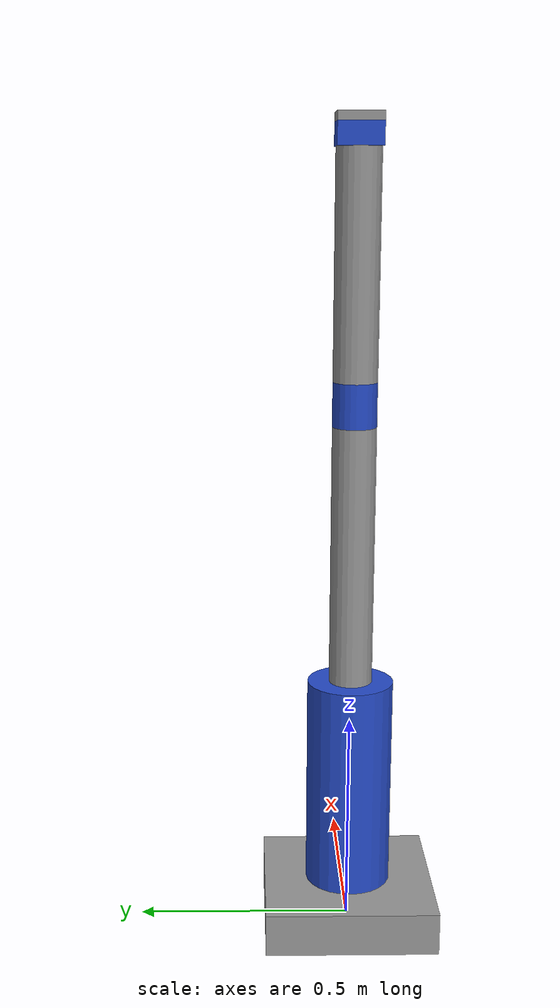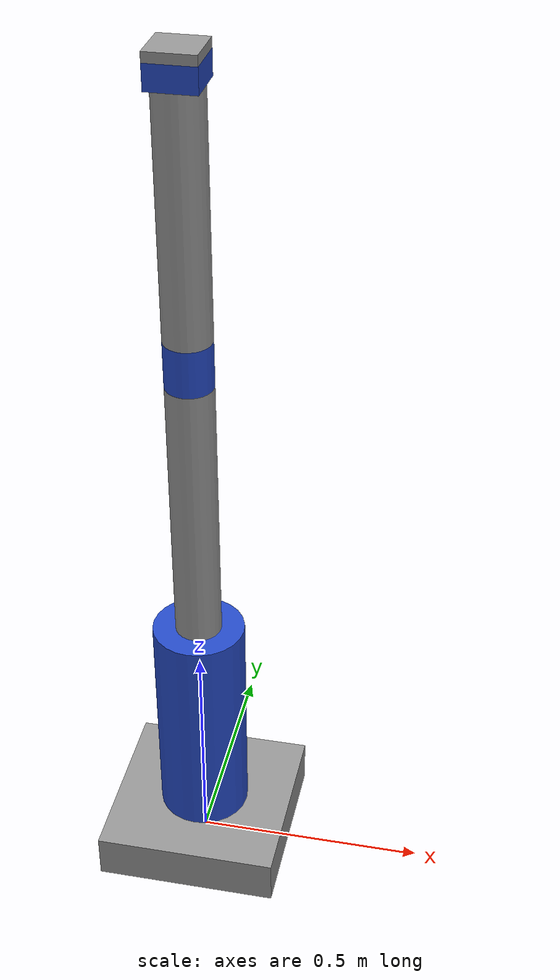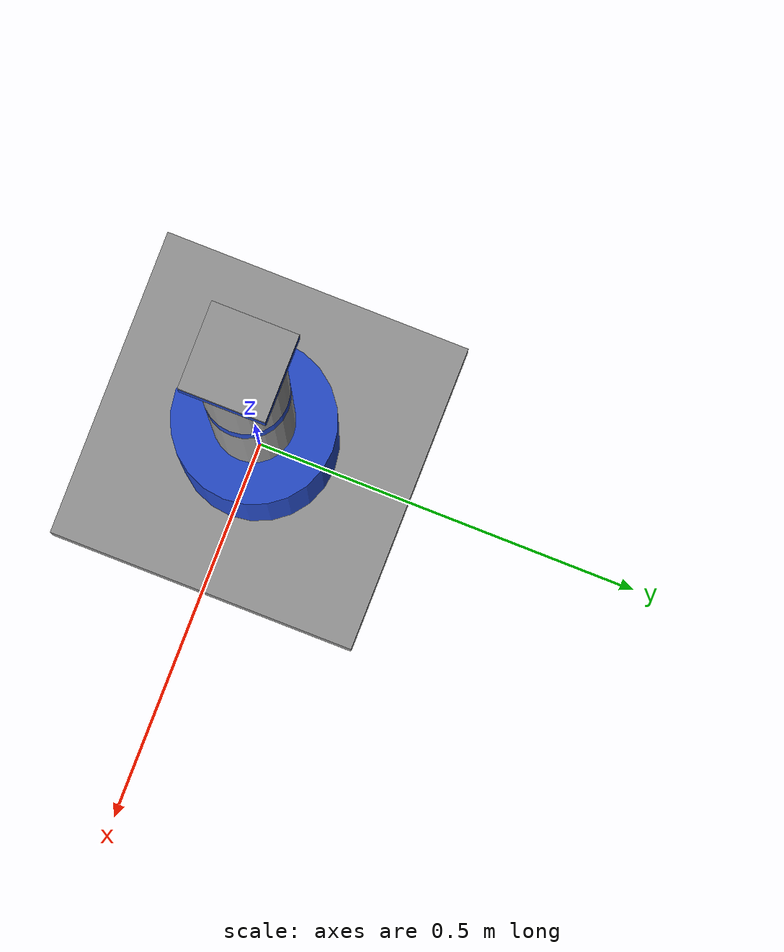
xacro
<?xml version="1.0" ?>
<robot xmlns:xacro="http://www.ros.org/xacro">

    <xacro:include filename="$(find growing_bot)/urdf/macros.xacro" />

    <!-- arm base -->
    <xacro:property name="arm_base_length" value="0.4" />
    <xacro:property name="arm_base_width" value="0.4" />
    <xacro:property name="arm_base_height" value="0.1" />
    <xacro:property name="arm_base_mass" value="2.0" />

    <!-- shoulder -->
    <xacro:property name="shoulder_length" value="0.5" />
    <xacro:property name="shoulder_radius" value="0.1" />
    <xacro:property name="shoulder_mass" value="1.5" />

    <!-- upper arm -->
    <xacro:property name="arm_length" value="0.6" />
    <xacro:property name="arm_radius" value="0.05" />
    <xacro:property name="arm_mass" value="1.0" />

    <!-- elbow -->
    <xacro:property name="elbow_length" value="0.1" />
    <xacro:property name="elbow_radius" value="0.05" />
    <xacro:property name="elbow_mass" value="0.3" />

    <!-- forearm -->
    <xacro:property name="forearm_length" value="0.5" />
    <xacro:property name="forearm_radius" value="0.05" />
    <xacro:property name="forearm_mass" value="0.8" />

    <!-- wrist -->
    <xacro:property name="wrist_length" value="0.1" />
    <xacro:property name="wrist_width" value="0.1" />
    <xacro:property name="wrist_height" value="0.05" />
    <xacro:property name="wrist_mass" value="0.2" />

    <!-- hand -->
    <xacro:property name="hand_length" value="0.1" />
    <xacro:property name="hand_width" value="0.1" />
    <xacro:property name="hand_height" value="0.02" />
    <xacro:property name="hand_mass" value="0.1" />

    <!-- joint limits / dynamics -->
    <xacro:property name="arm_joint_effort" value="1000" />
    <xacro:property name="arm_joint_velocity" value="1.0" />
    <xacro:property name="wrist_joint_effort" value="100" />
    <xacro:property name="wrist_joint_velocity" value="1.57" />
    <xacro:property name="arm_joint_damping" value="0.5" />
    <xacro:property name="arm_joint_friction" value="0.1" />

    <link name="arm_base_link">
        <visual>
            <geometry>
                <box size="${arm_base_length} ${arm_base_width} ${arm_base_height}" />
            </geometry>
            <material name="Gray" />
            <origin xyz="0 0 ${arm_base_height/2}" rpy="0 0 0" />
        </visual>
        <collision>
            <geometry>
                <box size="${arm_base_length} ${arm_base_width} ${arm_base_height}" />
            </geometry>
            <origin xyz="0 0 ${arm_base_height/2}" rpy="0 0 0" />
        </collision>
        <inertial>
            <origin xyz="0 0 ${arm_base_height/2}" rpy="0 0 0" />
            <mass value="${arm_base_mass}" />
            <xacro:box_inertia m="${arm_base_mass}" x="${arm_base_length}" y="${arm_base_width}" z="${arm_base_height}" />
        </inertial>
    </link>

    <link name="shoulder_link">
        <visual>
            <geometry>
                <cylinder length="${shoulder_length}" radius="${shoulder_radius}" />
            </geometry>
            <material name="Blue" />
            <origin xyz="0 0 ${shoulder_length/2}" rpy="0 0 0" />
        </visual>
        <collision>
            <geometry>
                <box size="${shoulder_radius} ${shoulder_radius} ${shoulder_length}" />
            </geometry>
            <origin xyz="0 0 ${shoulder_length/2}" rpy="0 0 0" />
        </collision>
        <inertial>
            <origin xyz="0 0 ${shoulder_length/2}" rpy="0 0 0" />
            <mass value="${shoulder_mass}" />
            <xacro:cylinder_inertia m="${shoulder_mass}" r="${shoulder_radius}" h="${shoulder_length}" />
        </inertial>
    </link>

    <link name="arm_link">
        <visual>
            <geometry>
                <cylinder length="${arm_length}" radius="${arm_radius}" />
            </geometry>
            <material name="Gray" />
            <origin xyz="0 0 ${arm_length/2}" rpy="0 0 0" />
        </visual>
        <collision>
            <geometry>
                <box size="${arm_radius} ${arm_radius} ${arm_length}" />
            </geometry>
            <origin xyz="0 0 ${arm_length/2}" rpy="0 0 0" />
        </collision>
        <inertial>
            <origin xyz="0 0 ${arm_length/2}" rpy="0 0 0" />
            <mass value="${arm_mass}" />
            <xacro:cylinder_inertia m="${arm_mass}" r="${arm_radius}" h="${arm_length}" />
        </inertial>
    </link>

    <link name="elbow_link">
        <visual>
            <geometry>
                <cylinder length="${elbow_length}" radius="${elbow_radius}" />
            </geometry>
            <material name="Blue" />
            <origin xyz="0 0 ${elbow_length/2}" rpy="0 0 0" />
        </visual>
        <collision>
            <geometry>
                <box size="${elbow_radius} ${elbow_radius} ${elbow_length}" />
            </geometry>
            <origin xyz="0 0 ${elbow_length/2}" rpy="0 0 0" />
        </collision>
        <inertial>
            <origin xyz="0 0 ${elbow_length/2}" rpy="0 0 0" />
            <mass value="${elbow_mass}" />
            <xacro:cylinder_inertia m="${elbow_mass}" r="${elbow_radius}" h="${elbow_length}" />
        </inertial>
    </link>

    <link name="forearm_link">
        <visual>
            <geometry>
                <cylinder length="${forearm_length}" radius="${forearm_radius}" />
            </geometry>
            <material name="Gray" />
            <origin xyz="0 0 ${forearm_length/2}" rpy="0 0 0" />
        </visual>
        <collision>
            <geometry>
                <box size="${forearm_radius} ${forearm_radius} ${forearm_length}" />
            </geometry>
            <origin xyz="0 0 ${forearm_length/2}" rpy="0 0 0" />
        </collision>
        <inertial>
            <origin xyz="0 0 ${forearm_length/2}" rpy="0 0 0" />
            <mass value="${forearm_mass}" />
            <xacro:cylinder_inertia m="${forearm_mass}" r="${forearm_radius}" h="${forearm_length}" />
        </inertial>
    </link>

    <link name="wrist_link">
        <visual>
            <geometry>
                <box size="${wrist_length} ${wrist_width} ${wrist_height}" />
            </geometry>
            <material name="Blue" />
            <origin xyz="0 0 ${wrist_height/2}" rpy="0 0 0" />
        </visual>
        <collision>
            <geometry>
                <box size="${wrist_length} ${wrist_width} ${wrist_height}" />
            </geometry>
            <origin xyz="0 0 ${wrist_height/2}" rpy="0 0 0" />
        </collision>
        <inertial>
            <origin xyz="0 0 ${wrist_height/2}" rpy="0 0 0" />
            <mass value="${wrist_mass}" />
            <xacro:box_inertia m="${wrist_mass}" x="${wrist_length}" y="${wrist_width}" z="${wrist_height}" />
        </inertial>
    </link>

    <link name="hand_link">
        <visual>
            <geometry>
                <box size="${hand_length} ${hand_width} ${hand_height}" />
            </geometry>
            <material name="Gray" />
            <origin xyz="0 0 ${hand_height/2}" rpy="0 0 0" />
        </visual>
        <collision>
            <geometry>
                <box size="${hand_length} ${hand_width} ${hand_height}" />
            </geometry>
            <origin xyz="0 0 ${hand_height/2}" rpy="0 0 0" />
        </collision>
        <inertial>
            <origin xyz="0 0 ${hand_height/2}" rpy="0 0 0" />
            <mass value="${hand_mass}" />
            <xacro:box_inertia m="${hand_mass}" x="${hand_length}" y="${hand_width}" z="${hand_height}" />
        </inertial>
    </link>

    <link name="tool_link" />

    <joint name="joint1" type="revolute">
        <parent link="arm_base_link" />
        <child link="shoulder_link" />
        <origin xyz="0 0 ${arm_base_height}" rpy="0 0 0" />
        <axis xyz="0 0 1" />
        <limit effort="${arm_joint_effort}" velocity="${arm_joint_velocity}" lower="-3.14" upper="3.14" />
        <dynamics damping="${arm_joint_damping}" friction="${arm_joint_friction}" />
    </joint>

    <joint name="joint2" type="revolute">
        <parent link="shoulder_link" />
        <child link="arm_link" />
        <origin xyz="0 0 ${shoulder_length}" rpy="0 0 0" />
        <axis xyz="0 1 0" />
        <!-- lower slightly below 0: Gazebo/ros2_control rest pose can be ~-1e-12 -->
        <limit effort="${arm_joint_effort}" velocity="${arm_joint_velocity}" lower="-0.01" upper="2.5" />
        <dynamics damping="${arm_joint_damping}" friction="${arm_joint_friction}" />
    </joint>

    <joint name="joint3" type="revolute">
        <parent link="arm_link" />
        <child link="elbow_link" />
        <origin xyz="0 0 ${arm_length}" rpy="0 0 0" />
        <axis xyz="0 1 0" />
        <limit effort="${arm_joint_effort}" velocity="${arm_joint_velocity}" lower="-0.01" upper="2.5" />
        <dynamics damping="${arm_joint_damping}" friction="${arm_joint_friction}" />
    </joint>

    <joint name="joint4" type="revolute">
        <parent link="elbow_link" />
        <child link="forearm_link" />
        <origin xyz="0 0 ${elbow_length}" rpy="0 0 0" />
        <axis xyz="0 1 0" />
        <limit effort="${wrist_joint_effort}" velocity="${wrist_joint_velocity}" lower="-3.14" upper="3.14" />
        <dynamics damping="${arm_joint_damping}" friction="${arm_joint_friction}" />
    </joint>

    <joint name="joint5" type="revolute">
        <parent link="forearm_link" />
        <child link="wrist_link" />
        <origin xyz="0 0 ${forearm_length}" rpy="0 0 0" />
        <axis xyz="0 1 0" />
        <limit effort="${wrist_joint_effort}" velocity="${wrist_joint_velocity}" lower="-1.57" upper="1.57" />
        <dynamics damping="${arm_joint_damping}" friction="${arm_joint_friction}" />
    </joint>

    <joint name="joint6" type="continuous">
        <parent link="wrist_link" />
        <child link="hand_link" />
        <origin xyz="0 0 ${wrist_height}" rpy="0 0 0" />
        <axis xyz="0 0 1" />
        <!-- velocity required: Jazzy JTC on_init reads limits->velocity (null => segfault) -->
        <limit effort="${wrist_joint_effort}" velocity="${wrist_joint_velocity}" />
        <dynamics damping="${arm_joint_damping}" friction="${arm_joint_friction}" />
    </joint>

    <joint name="hand_tool_joint" type="fixed">
        <parent link="hand_link" />
        <child link="tool_link" />
        <origin xyz="0 0 ${hand_height}" rpy="0 0 0" />
    </joint>

</robot>

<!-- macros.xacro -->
<robot xmlns:xacro="http://www.ros.org/wiki/xacro" name="growing_bot">

    <!--................................ INERTIA MATRICES .............................. -->

    <xacro:macro name="cylinder_inertia" params="m r h">
        <inertia ixx="${m * (3 * r * r + h * h) / 12}" ixy="0" ixz="0" iyy="${m * (3 * r * r + h * h) / 12}" iyz="0" izz="${m * r * r / 2}" />
    </xacro:macro>

    <xacro:macro name="box_inertia" params="m x y z">
        <inertia ixx="${m * (y * y + z * z) / 12}" ixy="0" ixz="0" iyy="${m * (x * x + z * z) / 12}" iyz="0" izz="${m * (y * y + x * x) / 12}" />
    </xacro:macro>

    <xacro:macro name="sphere_inertia" params="m r">
        <inertia ixx="${2 * m * r * r / 5}" ixy="0" ixz="0" iyy="${2 * m * r * r / 5}" iyz="0" izz="${2 * m * r * r / 5}" />
    </xacro:macro>

</robot>
